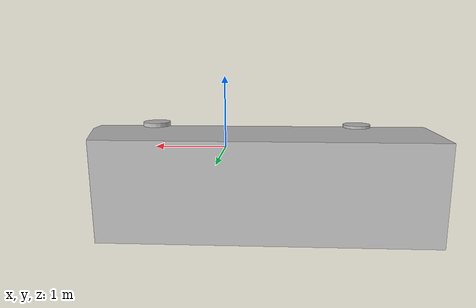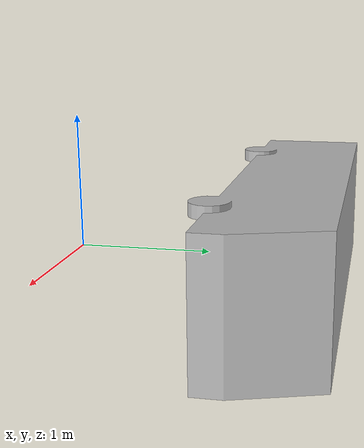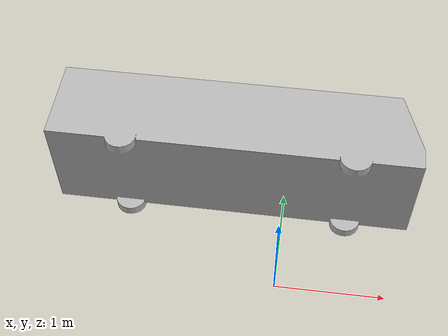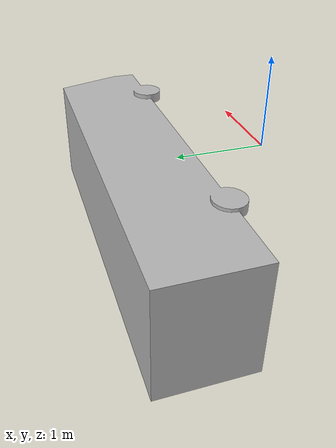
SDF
<?xml version="1.0" ?>
<sdf version="1.6">
  <model name="bus">
    <static>true</static>
    <link name="link">
      <collision name="collision">
        <geometry>
          <mesh>
            <pose>0 0 0 0 0 0</pose>

            <scale>0.22667415295835838 0.22667415295835838 0.22667415295835838</scale>
            <uri>model://bus/meshes/bus.obj</uri>
          </mesh>
        </geometry>
      </collision>
      <visual name="visual">
        <geometry>
          <mesh>
            <pose>0 0 0 0 0 0</pose>
            <scale>0.22667415295835838 0.22667415295835838 0.22667415295835838</scale>

            <uri>model://bus/meshes/bus.obj</uri>
          </mesh>
        </geometry>
      </visual>
    </link>
  </model>
</sdf>
